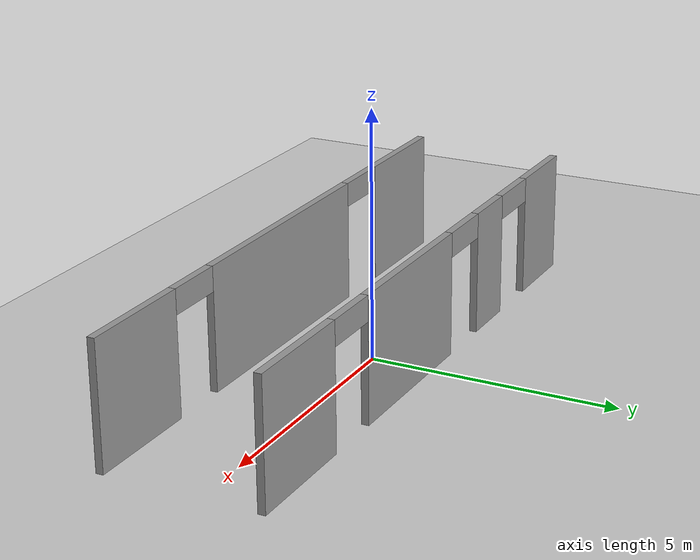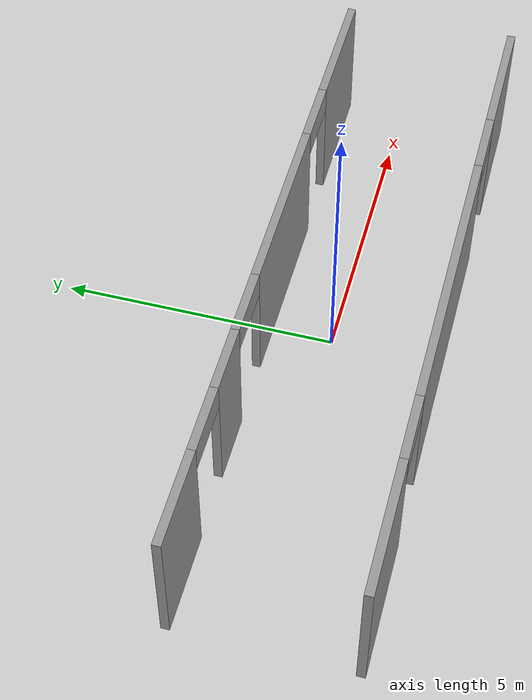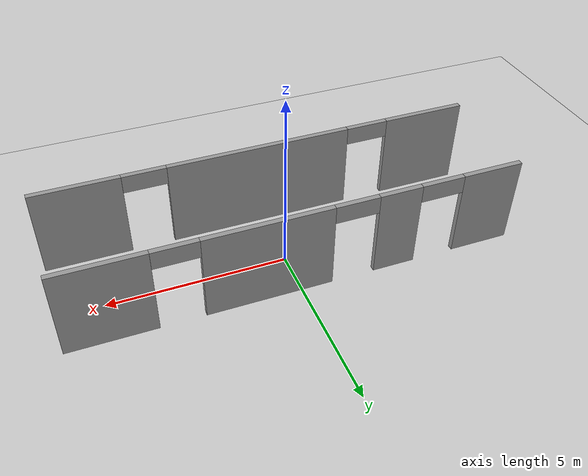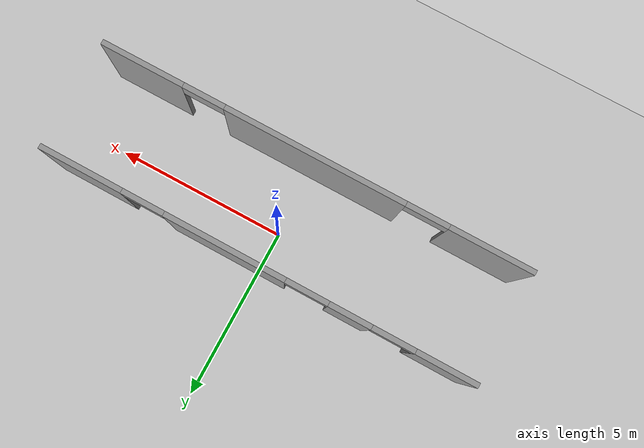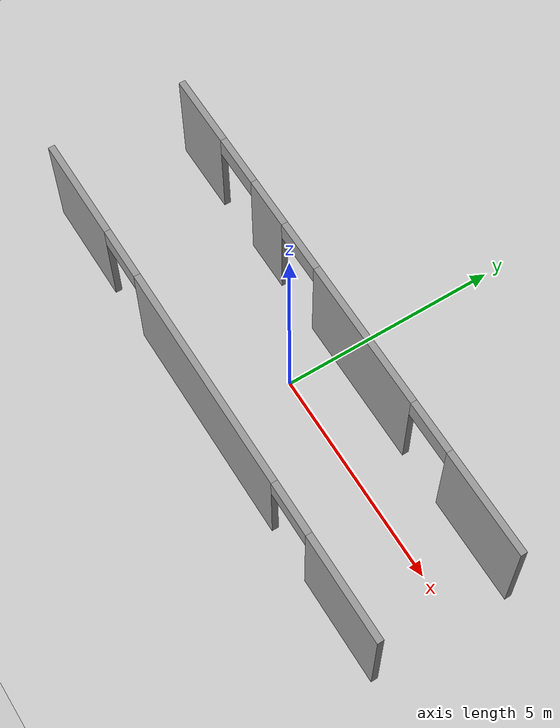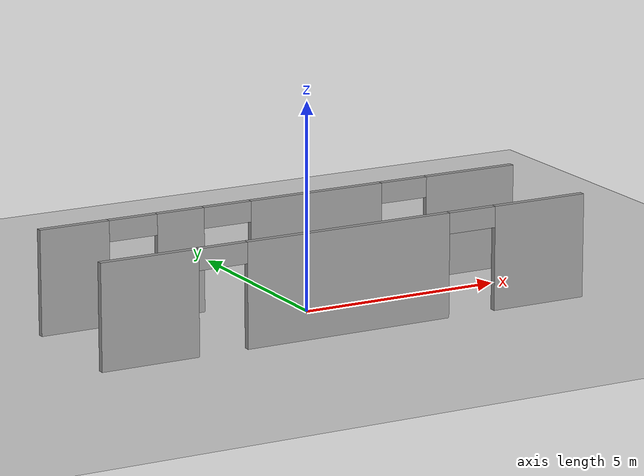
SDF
<sdf version="1.6">
 <world name="default">
  <light name="sun" type="directional">
   <pose>0 0 10 0 -0 0</pose>
   <diffuse>0.8 0.8 0.8 1</diffuse>
   <specular>0.2 0.2 0.2 1</specular>
   <attenuation>
    <range>1000</range>
    <constant>0.9</constant>
    <linear>0.01</linear>
    <quadratic>0.001</quadratic>
   </attenuation>
   <direction>-0.5 0.1 -0.9</direction>
  </light>
  <model name="ground_plane">
   <static>1</static>
   <link name="link">
    <collision name="collision">
     <geometry><plane><normal>0 0 1</normal><size>100 100</size></plane></geometry>
     <surface>
      <contact><collide_bitmask>65535</collide_bitmask></contact>
      <friction><ode><mu>100</mu><mu2>50</mu2></ode></friction>
     </surface>
    </collision>
    <visual name="visual">
     <cast_shadows>0</cast_shadows>
     <geometry><plane><normal>0 0 1</normal><size>100 100</size></plane></geometry>
     <material>
      <script><uri>file://media/materials/scripts/gazebo.material</uri><name>Gazebo/Grey</name></script>
     </material>
    </visual>
   </link>
  </model>
  <gravity>0 0 -9.8</gravity>
  <magnetic_field>6e-06 2.3e-05 -4.2e-05</magnetic_field>
  <atmosphere type="adiabatic"/>
  <physics name="default_physics" default="0" type="ode">
   <max_step_size>0.001</max_step_size>
   <real_time_factor>1</real_time_factor>
   <real_time_update_rate>1000</real_time_update_rate>
  </physics>
  <scene><ambient>0.4 0.4 0.4 1</ambient><background>0.7 0.7 0.7 1</background><shadows>1</shadows></scene>
  <spherical_coordinates>
   <surface_model>EARTH_WGS84</surface_model>
   <latitude_deg>0</latitude_deg>
   <longitude_deg>0</longitude_deg>
   <elevation>0</elevation>
   <heading_deg>0</heading_deg>
  </spherical_coordinates>
  <model name="non_symetric_corridor">
   <pose>-0.000391 -0.008652 0 0 -0 0</pose>
   <link name="Wall_0">
    <pose>-0 1.1825 0 0 -0 3.14159</pose>
    <visual name="Wall_0_Visual_0">
     <pose>-5.0425 0 1.25 0 -0 0</pose>
     <geometry><box><size>2.415 0.15 2.5</size></box></geometry>
     <material>
      <script><uri>file://media/materials/scripts/gazebo.material</uri><name>Gazebo/Grey</name></script>
      <ambient>1 1 1 1</ambient>
     </material>
     <meta><layer>0</layer></meta>
    </visual>
    <collision name="Wall_0_Collision_0">
     <geometry><box><size>2.415 0.15 2.5</size></box></geometry>
     <pose>-5.0425 0 1.25 0 -0 0</pose>
    </collision>
    <visual name="Wall_0_Visual_1">
     <pose>-0.871298 0 1.25 0 -0 0</pose>
     <geometry><box><size>3.4874 0.15 2.5</size></box></geometry>
     <material>
      <script><uri>file://media/materials/scripts/gazebo.material</uri><name>Gazebo/Grey</name></script>
      <ambient>1 1 1 1</ambient>
     </material>
     <meta><layer>0</layer></meta>
    </visual>
    <collision name="Wall_0_Collision_1">
     <geometry><box><size>3.4874 0.15 2.5</size></box></geometry>
     <pose>-0.871298 0 1.25 0 -0 0</pose>
    </collision>
    <visual name="Wall_0_Visual_2">
     <pose>2.69565 0 1.25 0 -0 0</pose>
     <geometry><box><size>1.2065 0.15 2.5</size></box></geometry>
     <material>
      <script><uri>file://media/materials/scripts/gazebo.material</uri><name>Gazebo/Grey</name></script>
      <ambient>1 1 1 1</ambient>
     </material>
     <meta><layer>0</layer></meta>
    </visual>
    <collision name="Wall_0_Collision_2">
     <geometry><box><size>1.2065 0.15 2.5</size></box></geometry>
     <pose>2.69565 0 1.25 0 -0 0</pose>
    </collision>
    <visual name="Wall_0_Visual_3">
     <pose>5.38445 0 1.25 0 -0 0</pose>
     <geometry><box><size>1.7311 0.15 2.5</size></box></geometry>
     <material>
      <script><uri>file://media/materials/scripts/gazebo.material</uri><name>Gazebo/Grey</name></script>
      <ambient>1 1 1 1</ambient>
     </material>
     <meta><layer>0</layer></meta>
    </visual>
    <collision name="Wall_0_Collision_3">
     <geometry><box><size>1.7311 0.15 2.5</size></box></geometry>
     <pose>5.38445 0 1.25 0 -0 0</pose>
    </collision>
    <visual name="Wall_0_Visual_4">
     <pose>-3.225 0 2.25 0 -0 0</pose>
     <geometry><box><size>1.22 0.15 0.5</size></box></geometry>
     <material>
      <script><uri>file://media/materials/scripts/gazebo.material</uri><name>Gazebo/Grey</name></script>
      <ambient>1 1 1 1</ambient>
     </material>
     <meta><layer>0</layer></meta>
    </visual>
    <collision name="Wall_0_Collision_4">
     <geometry><box><size>1.22 0.15 0.5</size></box></geometry>
     <pose>-3.225 0 2.25 0 -0 0</pose>
    </collision>
    <visual name="Wall_0_Visual_5">
     <pose>1.4824 0 2.25 0 -0 0</pose>
     <geometry><box><size>1.22 0.15 0.5</size></box></geometry>
     <material>
      <script><uri>file://media/materials/scripts/gazebo.material</uri><name>Gazebo/Grey</name></script>
      <ambient>1 1 1 1</ambient>
     </material>
     <meta><layer>0</layer></meta>
    </visual>
    <collision name="Wall_0_Collision_5">
     <geometry><box><size>1.22 0.15 0.5</size></box></geometry>
     <pose>1.4824 0 2.25 0 -0 0</pose>
    </collision>
    <visual name="Wall_0_Visual_6">
     <pose>3.9089 0 2.25 0 -0 0</pose>
     <geometry><box><size>1.22 0.15 0.5</size></box></geometry>
     <material>
      <script><uri>file://media/materials/scripts/gazebo.material</uri><name>Gazebo/Grey</name></script>
      <ambient>1 1 1 1</ambient>
     </material>
     <meta><layer>0</layer></meta>
    </visual>
    <collision name="Wall_0_Collision_6">
     <geometry><box><size>1.22 0.15 0.5</size></box></geometry>
     <pose>3.9089 0 2.25 0 -0 0</pose>
    </collision>
   </link>
   <link name="Wall_2">
    <pose>-0 -1.9575 0 0 -0 0</pose>
    <visual name="Wall_2_Visual_0">
     <pose>-5.0452 0 1.25 0 -0 0</pose>
     <geometry><box><size>2.40959 0.15 2.5</size></box></geometry>
     <material>
      <script><uri>file://media/materials/scripts/gazebo.material</uri><name>Gazebo/Grey</name></script>
      <ambient>1 1 1 1</ambient>
     </material>
     <meta><layer>0</layer></meta>
    </visual>
    <collision name="Wall_2_Collision_0">
     <geometry><box><size>2.40959 0.15 2.5</size></box></geometry>
     <pose>-5.0452 0 1.25 0 -0 0</pose>
    </collision>
    <visual name="Wall_2_Visual_1">
     <pose>-0.002702 0 1.25 0 -0 0</pose>
     <geometry><box><size>5.23541 0.15 2.5</size></box></geometry>
     <material>
      <script><uri>file://media/materials/scripts/gazebo.material</uri><name>Gazebo/Grey</name></script>
      <ambient>1 1 1 1</ambient>
     </material>
     <meta><layer>0</layer></meta>
    </visual>
    <collision name="Wall_2_Collision_1">
     <geometry><box><size>5.23541 0.15 2.5</size></box></geometry>
     <pose>-0.002702 0 1.25 0 -0 0</pose>
    </collision>
    <visual name="Wall_2_Visual_2">
     <pose>5.0425 0 1.25 0 -0 0</pose>
     <geometry><box><size>2.415 0.15 2.5</size></box></geometry>
     <material>
      <script><uri>file://media/materials/scripts/gazebo.material</uri><name>Gazebo/Grey</name></script>
      <ambient>1 1 1 1</ambient>
     </material>
     <meta><layer>0</layer></meta>
    </visual>
    <collision name="Wall_2_Collision_2">
     <geometry><box><size>2.415 0.15 2.5</size></box></geometry>
     <pose>5.0425 0 1.25 0 -0 0</pose>
    </collision>
    <visual name="Wall_2_Visual_3">
     <pose>-3.23041 0 2.25 0 -0 0</pose>
     <geometry><box><size>1.22 0.15 0.5</size></box></geometry>
     <material>
      <script><uri>file://media/materials/scripts/gazebo.material</uri><name>Gazebo/Grey</name></script>
      <ambient>1 1 1 1</ambient>
     </material>
     <meta><layer>0</layer></meta>
    </visual>
    <collision name="Wall_2_Collision_3">
     <geometry><box><size>1.22 0.15 0.5</size></box></geometry>
     <pose>-3.23041 0 2.25 0 -0 0</pose>
    </collision>
    <visual name="Wall_2_Visual_4">
     <pose>3.225 0 2.25 0 -0 0</pose>
     <geometry><box><size>1.22 0.15 0.5</size></box></geometry>
     <material>
      <script><uri>file://media/materials/scripts/gazebo.material</uri><name>Gazebo/Grey</name></script>
      <ambient>1 1 1 1</ambient>
     </material>
     <meta><layer>0</layer></meta>
    </visual>
    <collision name="Wall_2_Collision_4">
     <geometry><box><size>1.22 0.15 0.5</size></box></geometry>
     <pose>3.225 0 2.25 0 -0 0</pose>
    </collision>
   </link>
   <static>1</static>
  </model>
 </world>
</sdf>
